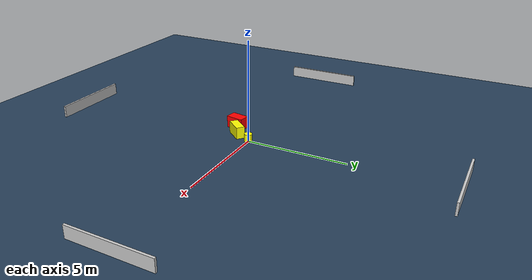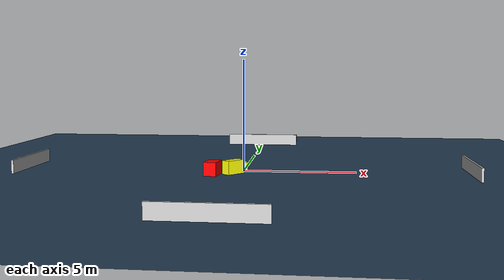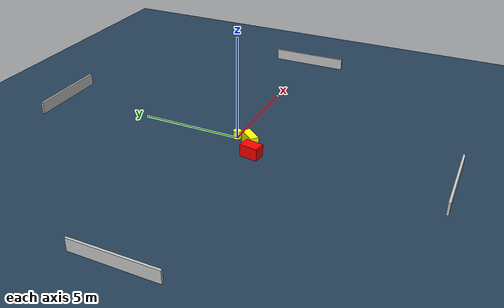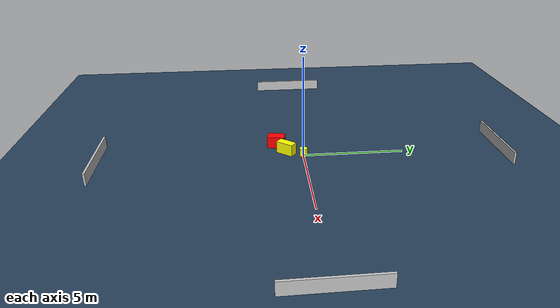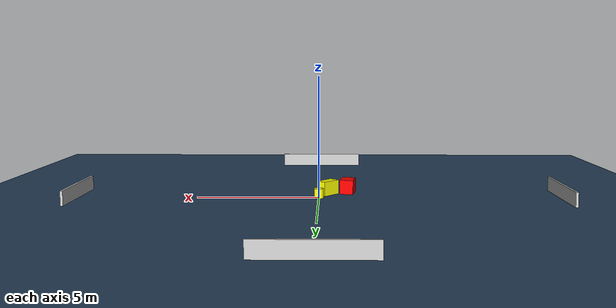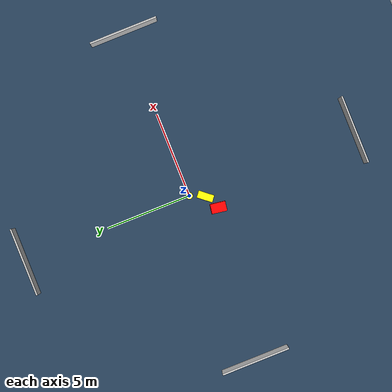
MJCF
<?xml version="1.0" ?>
<mujoco model="generated_environment">
  <option timestep="0.01" integrator="RK4" cone="elliptic"/>
  <default>
    <geom density="1"/>
  </default>
  <asset>
    <texture builtin="gradient" height="3072" name="skybox" rgb1="0.3 0.5 0.7" rgb2="0 0 0" type="skybox" width="512"/>
    <texture builtin="checker" height="300" name="groundplane" rgb1="0.2 0.3 0.4" rgb2="0.1 0.2 0.3" type="2d" width="300"/>
    <material name="groundplane" reflectance="0.2" texrepeat="5 5" texture="groundplane"/>
  </asset>
  <worldbody>
    <light dir="0 0 -1" directional="true" pos="0 0 1.5"/>
    <geom condim="3" friction="0.5 0.005 0.001" material="groundplane" name="floor" pos="0 0 0" size="0 0 0.05" type="plane"/>
    <body name="walls">
      <geom name="wall_1" condim="4" pos="-10.0 0.0 0.3" rgba="0.800000011920929 0.800000011920929 0.800000011920929 1.0" size="0.05 2.0 0.3" type="box"/>
      <geom name="wall_2" condim="4" pos="10.0 0.0 0.3" rgba="0.800000011920929 0.800000011920929 0.800000011920929 1.0" size="0.05 2.0 0.3" type="box"/>
      <geom name="wall_3" condim="4" pos="0.0 -10.0 0.3" rgba="0.800000011920929 0.800000011920929 0.800000011920929 1.0" size="2.0 0.05 0.3" type="box"/>
      <geom name="wall_4" condim="4" pos="0.0 10.0 0.3" rgba="0.800000011920929 0.800000011920929 0.800000011920929 1.0" size="2.0 0.05 0.3" type="box"/>
    </body>
    <body name="robot">
      <joint name="joint_x" type="slide" pos="0 0 0" axis="1 0 0"/>
      <joint name="joint_y" type="slide" pos="0 0 0" axis="0 1 0"/>
      <geom name="robot" type="cylinder" pos="0.0 0.0 0.2" size="0.2 0.2 0.0" mass="5.0" friction="1.0 0.005 0.0001" condim="4" rgba="1.0 1.0 0.0 1.0"/>
    </body>
    <body name="obstacle_1_movable">
      <geom name="obstacle_1_movable" condim="4" pos="-0.36839267489007244 -0.8227084120183419 0.3" euler="0 0 140.5548480048339" friction="0.0 0.005 0.001" rgba="1.0 1.0 0.0 1.0" size="0.21176873902027807 0.4591359976995699 0.3" type="box" mass="0.1"/>
      <joint type="free"/>
    </body>
    <body name="obstacle_2_static">
      <geom name="obstacle_2_static" condim="4" pos="-1.2191127039091596 -1.2736345182433533 0.3" euler="0 0 81.16811866139676" friction="0.0 0.005 0.001" rgba="1.0 0.0 0.0 1.0" size="0.4400239658842693 0.2804089069828974 0.3" type="box"/>
    </body>
  </worldbody>
  <actuator>
    <motor name="actuator_x" joint="joint_x" gear="1" ctrlrange="-1 1"/>
    <motor name="actuator_y" joint="joint_y" gear="1" ctrlrange="-1 1"/>
  </actuator>
</mujoco>
